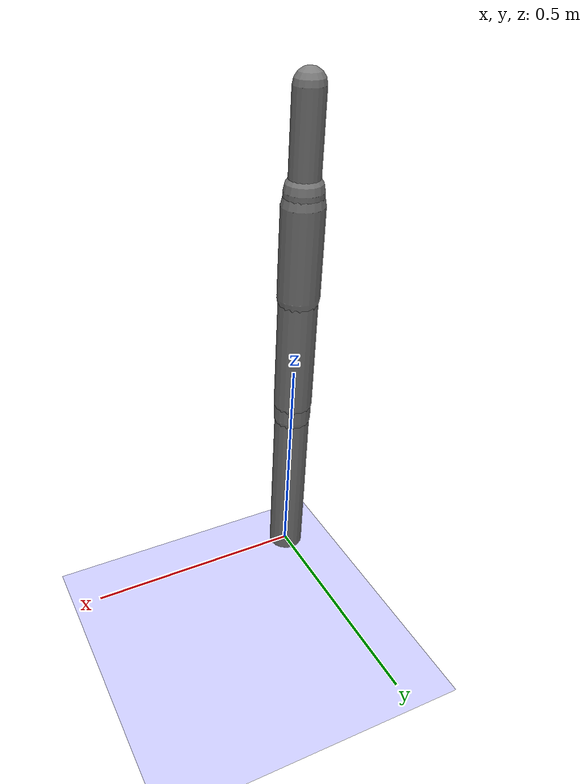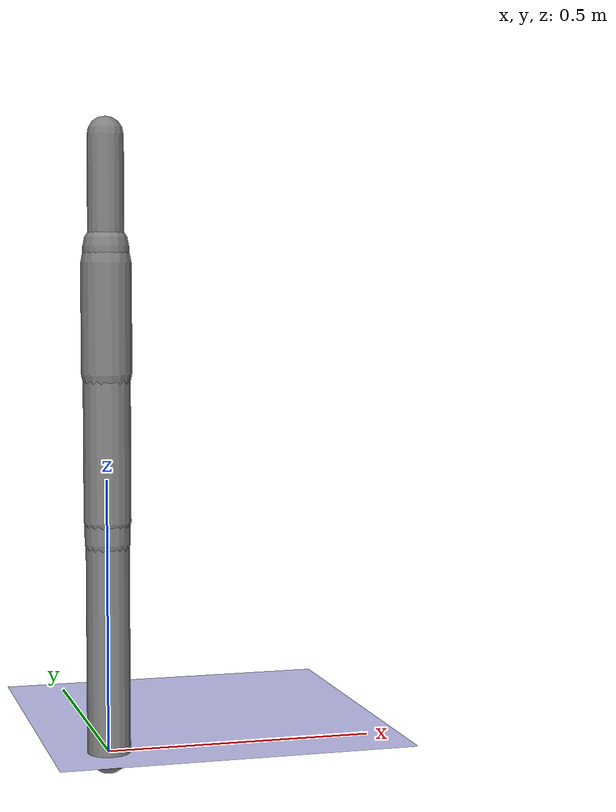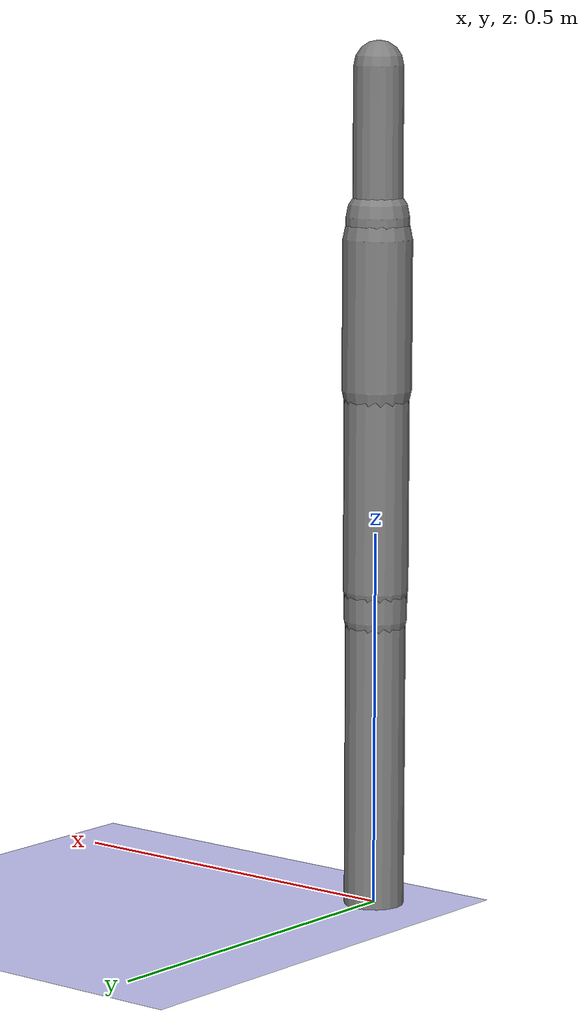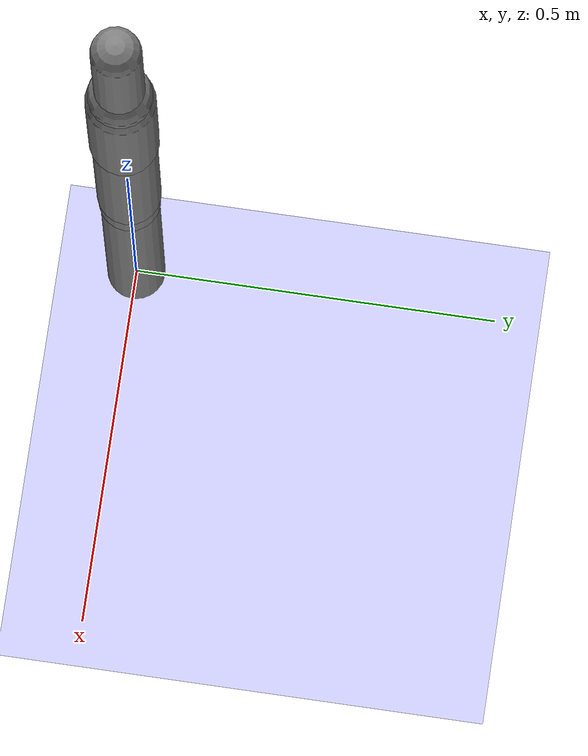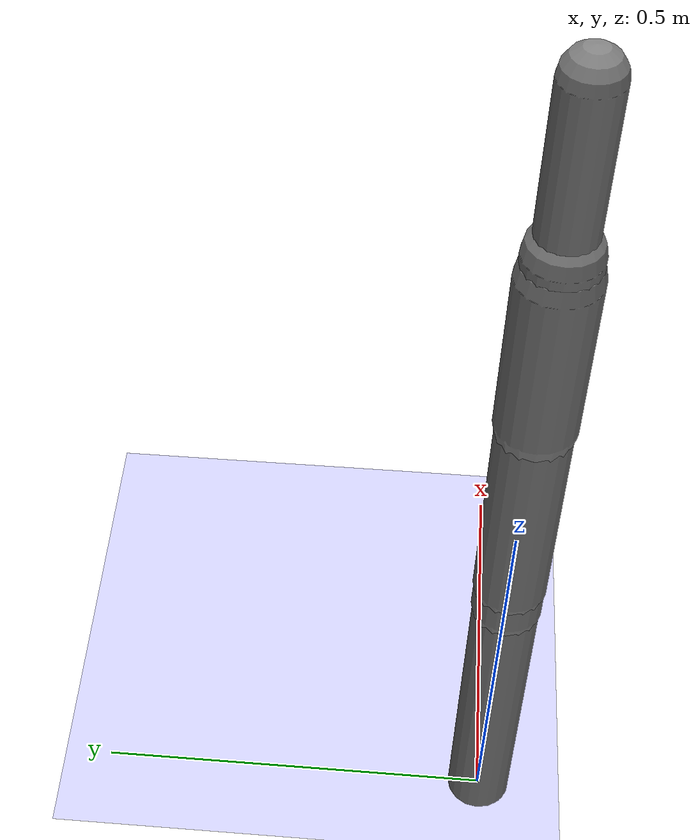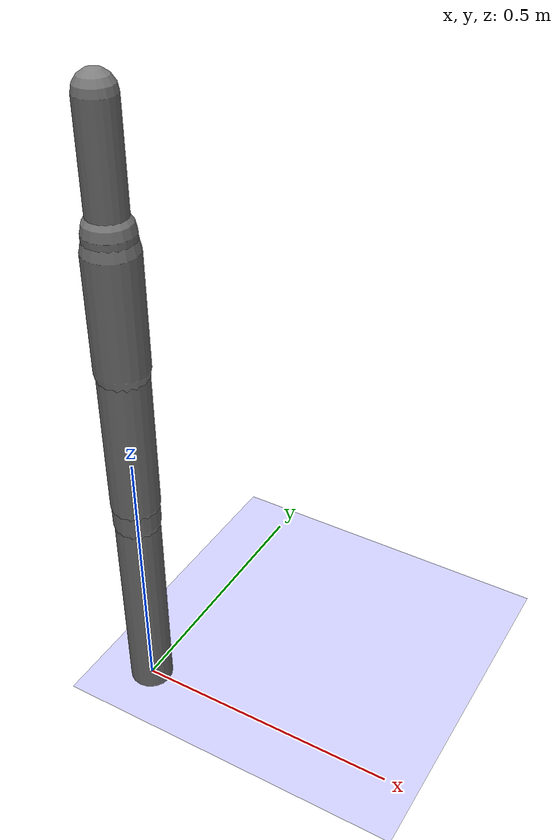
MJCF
<?xml version='1.0' encoding='UTF-8'?>
<mujoco model="robot_model">
  <worldbody>
    <light name="light" pos="0 -3 10" dir="0 0.5 -1" diffuse=".8 .8 .8" specular="0.1 0.1 0.1"/>
    <geom name="floor" type="plane" size="10.0 10.0 0.1" pos="0 0 0" rgba="0.8 0.8 1 1" contype="2" conaffinity="1"/>
    <body name="limb0" pos="0 0 0">
      <geom type="capsule" fromto="0 0 0 0 0 0.5591992442101426" size="0.04" density="1006.992780612291" contype="1" conaffinity="2"/>
      <site type="sphere" size="0.01" name="limb0_site0" pos="0 0 0.3226063180096684"/>
      <freejoint name="limb0_root"/>
      <body name="limb1" pos="0 0 0.3226063180096684">
        <geom type="capsule" fromto="0 0 0 0 0 0.16293838219924797" size="0.03294979075283615" density="768.4655649334691" contype="1" conaffinity="2"/>
        <site type="sphere" size="0.01" name="limb1_site0" pos="0 0 0.10165770993877273"/>
        <site type="sphere" size="0.01" name="limb1_site1" pos="0 0 0.06237900581419778"/>
        <site type="sphere" size="0.01" name="limb1_site2" pos="0 0 0.15652918234910357"/>
        <body name="limb2" pos="0 0 0.10165770993877273">
          <geom type="capsule" fromto="0 0 0 0 0 0.38231057733543733" size="0.04320126958942399" density="764.0354914470512" contype="1" conaffinity="2"/>
          <joint name="joint_limb1_limb2_0" type="hinge" axis="0 1 0" range="-79.19027832141104 79.19027832141104" damping="5.0"/>
        </body>
        <body name="limb3" pos="0 0 0.06237900581419778">
          <geom type="capsule" fromto="0 0 0 0 0 0.3449366956007403" size="0.04182995516077146" density="888.638751137447" contype="1" conaffinity="2"/>
          <site type="sphere" size="0.01" name="limb3_site0" pos="0 0 0.34476469369601037"/>
          <body name="limb4" pos="0 0 0.34476469369601037">
            <geom type="capsule" fromto="0 0 0 0 0 0.38689637571819735" size="0.03296585503229504" density="787.6117064878987" contype="1" conaffinity="2"/>
            <joint name="joint_limb3_limb4_0" type="hinge" axis="0 1 0" range="-97.60316524447805 97.60316524447805" damping="5.0"/>
          </body>
          <joint name="joint_limb1_limb3_0" type="hinge" axis="1 0 0" range="-76.57739072162552 76.57739072162552" damping="5.0"/>
        </body>
        <body name="limb5" pos="0 0 0.15652918234910357">
          <geom type="capsule" fromto="0 0 0 0 0 0.4408361842161085" size="0.04214211921864572" density="1036.1757387395294" contype="1" conaffinity="2"/>
          <site type="sphere" size="0.01" name="limb5_site0" pos="0 0 0.21248451122979395"/>
          <site type="sphere" size="0.01" name="limb5_site1" pos="0 0 0.22577386364331703"/>
          <body name="limb6" pos="0 0 0.21248451122979395">
            <geom type="capsule" fromto="0 0 0 0 0 0.19942307054689806" size="0.04609395862756084" density="1147.4288306062897" contype="1" conaffinity="2"/>
            <joint name="joint_limb5_limb6_0" type="hinge" axis="0 1 0" range="-86.8112970984505 86.8112970984505" damping="5.0"/>
          </body>
          <body name="limb7" pos="0 0 0.22577386364331703">
            <geom type="capsule" fromto="0 0 0 0 0 0.10132629865508748" size="0.028272016099352537" density="685.6739189435759" contype="1" conaffinity="2"/>
            <joint name="joint_limb5_limb7_0" type="hinge" axis="1 0 0" range="-39.46093477322345 39.46093477322345" damping="5.0"/>
          </body>
          <joint name="joint_limb1_limb5_0" type="hinge" axis="0 1 0" range="-81.74728971790681 81.74728971790681" damping="5.0"/>
        </body>
        <joint name="joint_limb0_limb1_0" type="hinge" axis="0 1 0" range="-118.43465417951464 118.43465417951464" damping="5.0"/>
      </body>
    </body>
  </worldbody>
  <actuator>
    <position name="position_actuator_joint_limb0_limb1_0" joint="joint_limb0_limb1_0" gear="1.3172310151340172" inheritrange="1" kp="10.0"/>
    <position name="position_actuator_joint_limb1_limb2_0" joint="joint_limb1_limb2_0" gear="1.0104857860709995" inheritrange="1" kp="10.0"/>
    <position name="position_actuator_joint_limb1_limb3_0" joint="joint_limb1_limb3_0" gear="1.9786544527946286" inheritrange="1" kp="10.0"/>
    <position name="position_actuator_joint_limb3_limb4_0" joint="joint_limb3_limb4_0" gear="1.7459471619076385" inheritrange="1" kp="10.0"/>
    <position name="position_actuator_joint_limb1_limb5_0" joint="joint_limb1_limb5_0" gear="1.1401681469709617" inheritrange="1" kp="10.0"/>
    <position name="position_actuator_joint_limb5_limb6_0" joint="joint_limb5_limb6_0" gear="1.2162188671009793" inheritrange="1" kp="10.0"/>
    <position name="position_actuator_joint_limb5_limb7_0" joint="joint_limb5_limb7_0" gear="1.6699171564828723" inheritrange="1" kp="10.0"/>
  </actuator>
</mujoco>
